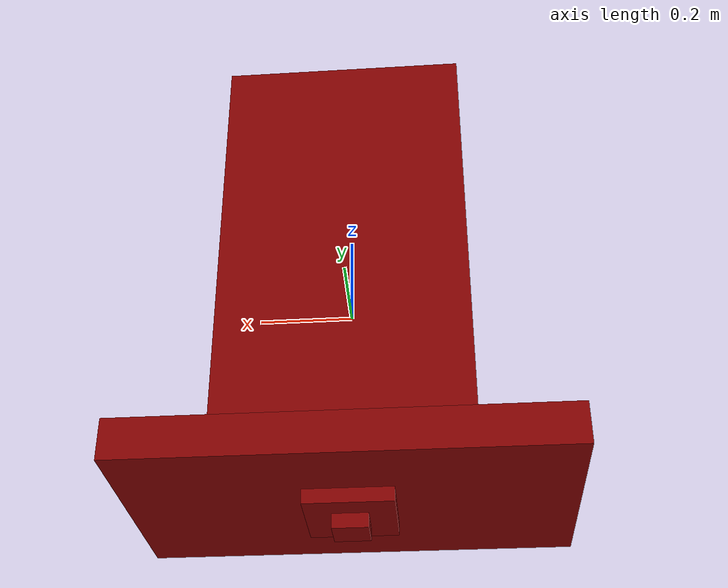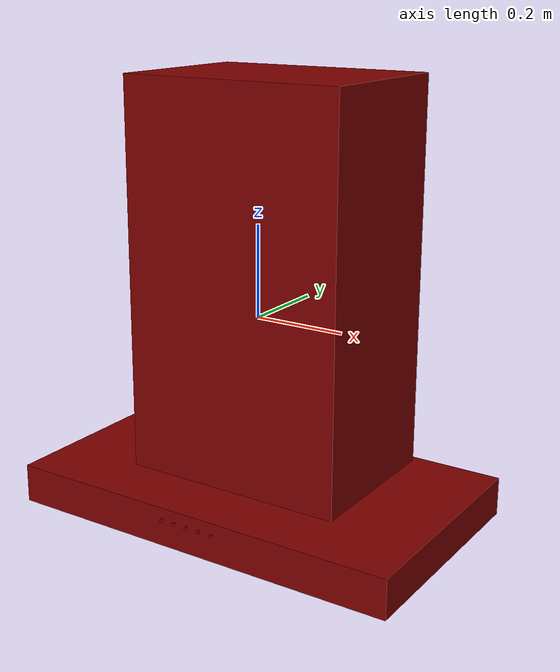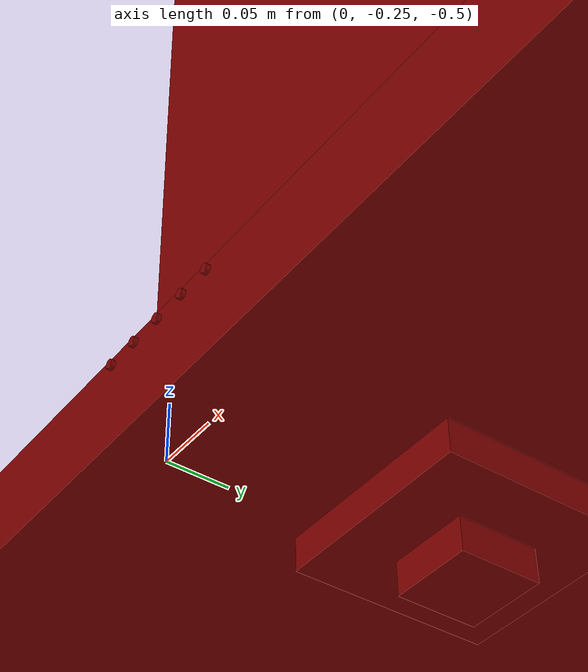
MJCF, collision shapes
<?xml version='1.0' encoding='UTF-8'?>
<mujoco model="model">
  <compiler angle="radian"/>
  <asset>
    <mesh file="visuals/Body001.obj" name="Body001_vis"/>
    <mesh file="visuals/Button001.obj" name="Button001_vis"/>
    <mesh file="visuals/Button002.obj" name="Button002_vis"/>
    <mesh file="visuals/Button003.obj" name="Button003_vis"/>
    <mesh file="visuals/Button004.obj" name="Button004_vis"/>
    <mesh file="visuals/Button005.obj" name="Button005_vis"/>
    <texture file="visuals/T_BC001.png" name="Body001_material" type="2d"/>
    <material name="Body001_material" rgba="1 1 1 1.0" texture="Body001_material" shininess="0.141421377658844" specular="0.3103448502657381"/>
    <texture file="visuals/T_BC001.png" name="Button001_material" type="2d"/>
    <material name="Button001_material" rgba="1 1 1 1.0" texture="Button001_material" shininess="0.141421377658844" specular="0.3103448502657381"/>
    <texture file="visuals/T_BC001.png" name="Button002_material" type="2d"/>
    <material name="Button002_material" rgba="1 1 1 1.0" texture="Button002_material" shininess="0.141421377658844" specular="0.3103448502657381"/>
    <texture file="visuals/T_BC001.png" name="Button003_material" type="2d"/>
    <material name="Button003_material" rgba="1 1 1 1.0" texture="Button003_material" shininess="0.141421377658844" specular="0.3103448502657381"/>
    <texture file="visuals/T_BC001.png" name="Button004_material" type="2d"/>
    <material name="Button004_material" rgba="1 1 1 1.0" texture="Button004_material" shininess="0.141421377658844" specular="0.3103448502657381"/>
    <texture file="visuals/T_BC001.png" name="Button005_material" type="2d"/>
    <material name="Button005_material" rgba="1 1 1 1.0" texture="Button005_material" shininess="0.141421377658844" specular="0.3103448502657381"/>
  </asset>
  <default>
    <default class="visual">
      <geom conaffinity="0" contype="0" group="1" type="mesh"/>
    </default>
    <default class="collision">
      <geom group="0" rgba="0.5 0 0 0.5"/>
    </default>
    <default class="spawn">
      <geom group="0" rgba="1 1 1 0.5" contype="0" conaffinity="0"/>
      <site group="0" rgba="1 1 1 0.5"/>
    </default>
    <default class="region">
      <geom group="1" conaffinity="0" contype="0" rgba="0 1 0 0"/>
    </default>
  </default>
  <worldbody>
    <body>
      <body name="object">
        <geom mesh="Body001_vis" type="mesh" solimp="0.998 0.998 0.001" solref="0.001 1" density="100" friction="0.95 0.3 0.1" class="visual" material="Body001_material"/>
        <geom class="collision" type="box" pos="0.000197 0.066558 0.070969" size="0.2521349787712097 0.18151935935020447 0.4318586587905884" quat="1.0 0.0 0.0 0.0"/>
        <geom class="collision" type="box" pos="0.000001 0.005903 -0.398361" size="0.45068585872650146 0.2600840628147125 0.042565152049064636" quat="1.0 0.0 0.0 0.0"/>
        <geom class="collision" type="box" pos="0.000553 0.013587 -0.450732" size="0.09031478315591812 0.09031478315591812 0.020262539386749268" quat="1.0 0.0 0.0 0.0"/>
        <geom class="collision" type="box" pos="0.000553 0.013587 -0.485370" size="0.03653748333454132 0.03653748333454132 0.01597134955227375" quat="1.0 0.0 0.0 0.0"/>
        <body name="Button001">
          <joint axis="0.0 -1.0 0.0" pos="-0.062502 -0.263751 -0.377530" limited="true" name="Button001_joint" range="-0.002 0.0" type="slide" damping="1" frictionloss="1" armature=".01" stiffness="0.05"/>
          <geom mesh="Button001_vis" type="mesh" solimp="0.998 0.998 0.001" solref="0.001 1" density="100" friction="0.95 0.3 0.1" class="visual" material="Button001_material"/>
          <geom class="collision" type="cylinder" pos="-0.062508 -0.263749 -0.377602" size="0.004022396169602871 0.0019342792220413685" quat="0.7071068286895752 0.7071067690849304 0.0 0.0"/>
        </body>
        <body name="Button002">
          <joint axis="0.0 -1.0 0.0" pos="-0.031596 -0.263751 -0.377530" limited="true" name="Button002_joint" range="-0.002 0.0" type="slide" damping="1" frictionloss="1" armature=".01" stiffness="0.05"/>
          <geom mesh="Button002_vis" type="mesh" solimp="0.998 0.998 0.001" solref="0.001 1" density="100" friction="0.95 0.3 0.1" class="visual" material="Button002_material"/>
          <geom class="collision" type="cylinder" pos="-0.031594 -0.263749 -0.377602" size="0.004022396169602871 0.0019342792220413685" quat="0.7071068286895752 0.7071067690849304 0.0 0.0"/>
        </body>
        <body name="Button003">
          <joint axis="0.0 -1.0 0.0" pos="-0.000712 -0.263751 -0.377530" limited="true" name="Button003_joint" range="-0.002 0.0" type="slide" damping="1" frictionloss="1" armature=".01" stiffness="0.05"/>
          <geom mesh="Button003_vis" type="mesh" solimp="0.998 0.998 0.001" solref="0.001 1" density="100" friction="0.95 0.3 0.1" class="visual" material="Button003_material"/>
          <geom class="collision" type="cylinder" pos="-0.000721 -0.263749 -0.377602" size="0.004022396169602871 0.0019342792220413685" quat="0.7071068286895752 0.7071067690849304 0.0 0.0"/>
        </body>
        <body name="Button004">
          <joint axis="0.0 -1.0 0.0" pos="0.030714 -0.263751 -0.377530" limited="true" name="Button004_joint" range="-0.002 0.0" type="slide" damping="1" frictionloss="1" armature=".01" stiffness="0.05"/>
          <geom mesh="Button004_vis" type="mesh" solimp="0.998 0.998 0.001" solref="0.001 1" density="100" friction="0.95 0.3 0.1" class="visual" material="Button004_material"/>
          <geom class="collision" type="cylinder" pos="0.030702 -0.263749 -0.377602" size="0.004022396169602871 0.0019342792220413685" quat="0.7071068286895752 0.7071067690849304 0.0 0.0"/>
        </body>
        <body name="Button005">
          <joint axis="0.0 -1.0 0.0" pos="0.061597 -0.263751 -0.377530" limited="true" name="Button005_joint" range="-0.002 0.0" type="slide" damping="1" frictionloss="1" armature=".01" stiffness="0.05"/>
          <geom mesh="Button005_vis" type="mesh" solimp="0.998 0.998 0.001" solref="0.001 1" density="100" friction="0.95 0.3 0.1" class="visual" material="Button005_material"/>
          <geom class="collision" type="cylinder" pos="0.061625 -0.263749 -0.377602" size="0.004022396169602871 0.0019342792220413685" quat="0.7071068286895752 0.7071067690849304 0.0 0.0"/>
        </body>
        <geom class="region" name="reg_main" type="box" pos="0.0 0.0 -0.0006794999999999995" size="0.450232 0.265652 0.5021655"/>
      </body>
    </body>
  </worldbody>
  <actuator>
    <motor name="Button001_joint_actuator" joint="Button001_joint" gear="0.5"/>
    <motor name="Button002_joint_actuator" joint="Button002_joint" gear="0.5"/>
    <motor name="Button003_joint_actuator" joint="Button003_joint" gear="0.5"/>
    <motor name="Button004_joint_actuator" joint="Button004_joint" gear="0.5"/>
    <motor name="Button005_joint_actuator" joint="Button005_joint" gear="0.5"/>
  </actuator>
</mujoco>
